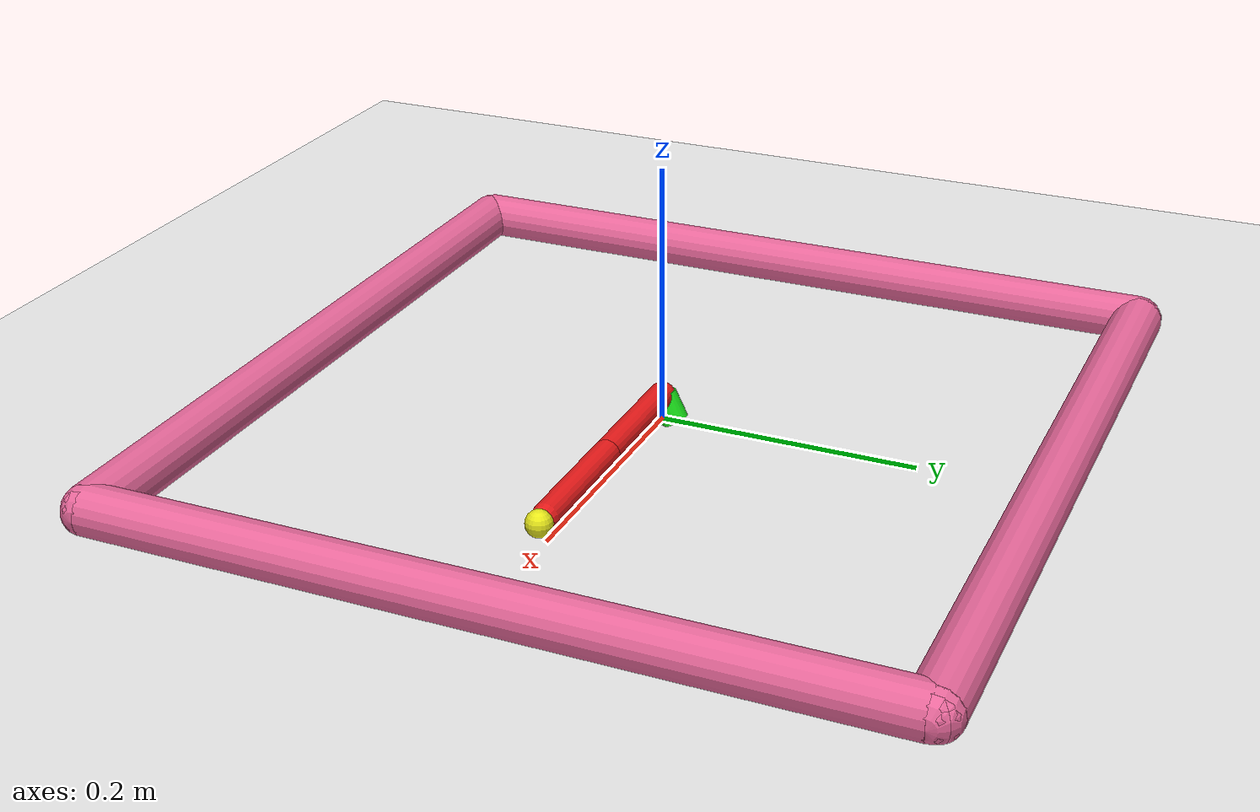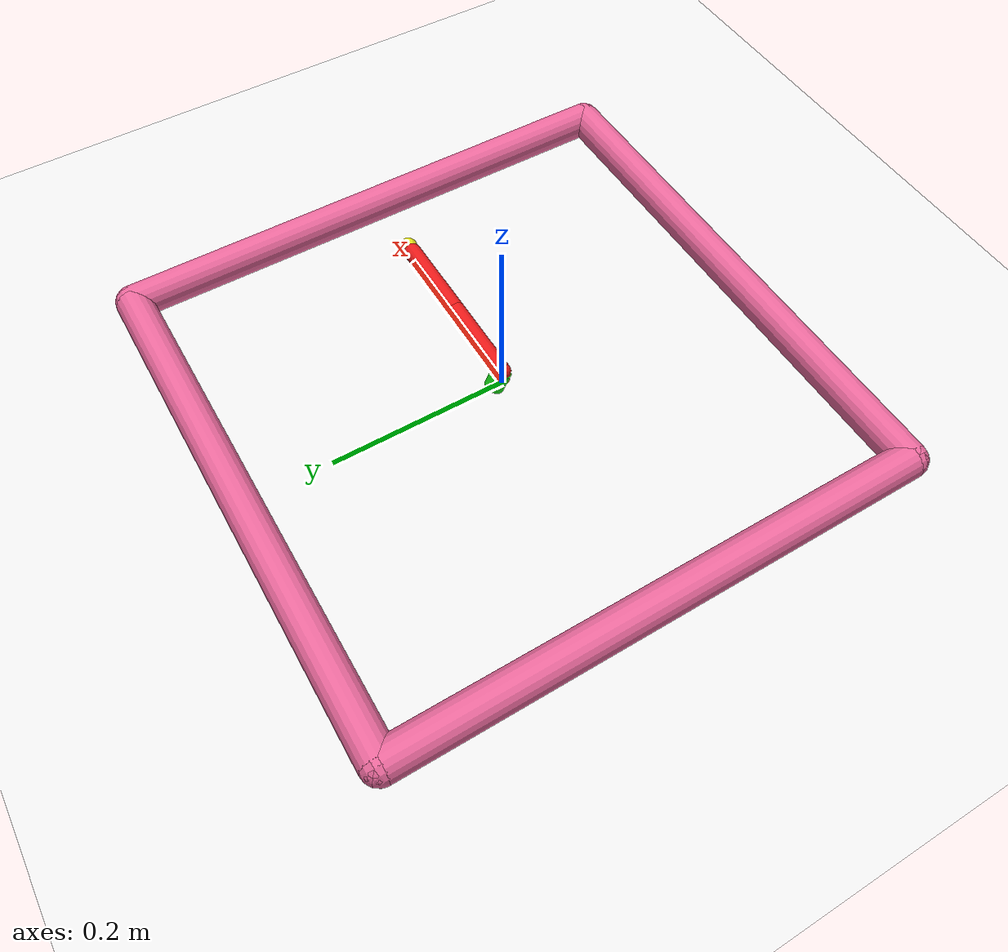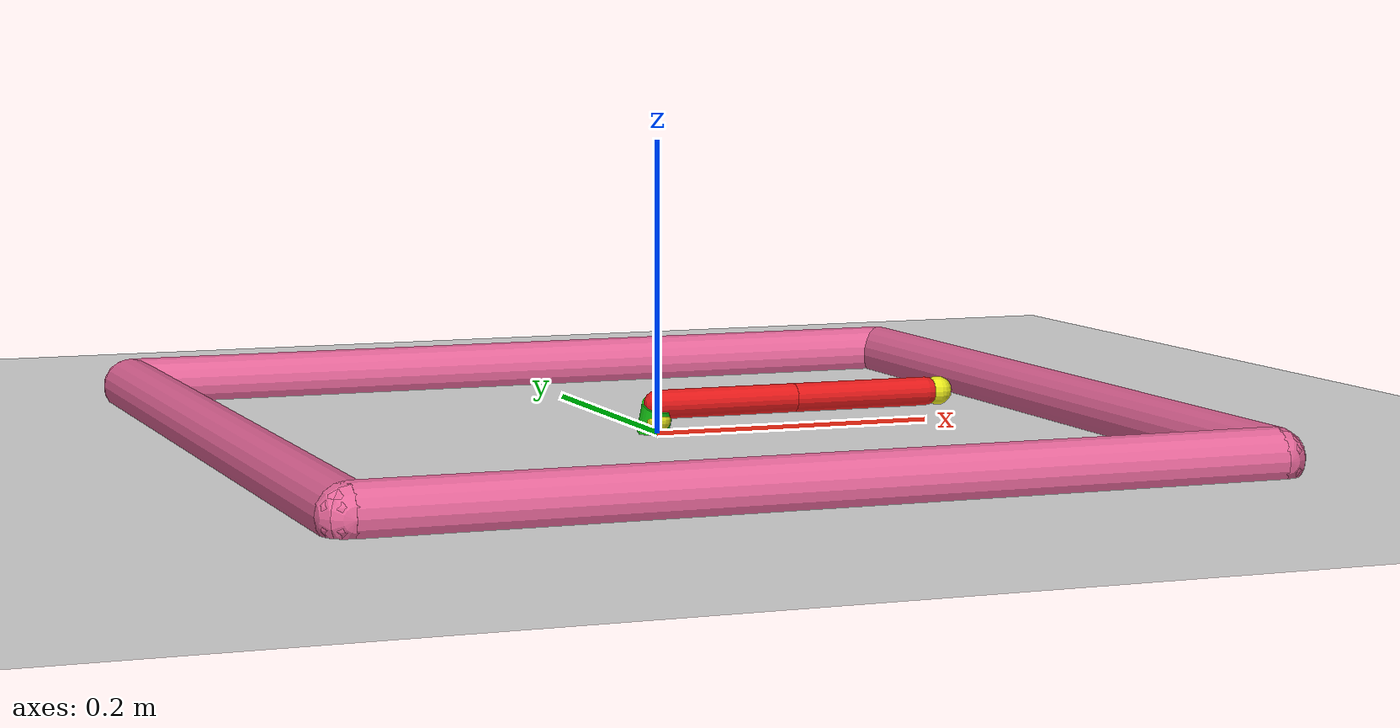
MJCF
<mujoco model="reacher2d">
	<compiler angle="radian" inertiafromgeom="true"/>
	<default>
		<joint armature="1" damping="1" limited="true"/>
		<geom contype="0" friction="1 0.1 0.1" rgba="0.7 0.7 0 1"/>
	</default>
	<option gravity="0 0 -9.81" integrator="RK4" timestep="0.01"/>
	<worldbody>
		<!-- Arena -->
		<geom conaffinity="0" contype="0" name="ground" pos="0 0 0" rgba="0.9 0.9 0.9 1" size="1 1 10" type="plane"/>
		<geom conaffinity="0" fromto="-.3 -.3 .01 .3 -.3 .01" name="sideS" rgba="0.9 0.4 0.6 1" size=".02" type="capsule"/>
		<geom conaffinity="0" fromto=" .3 -.3 .01 .3  .3 .01" name="sideE" rgba="0.9 0.4 0.6 1" size=".02" type="capsule"/>
		<geom conaffinity="0" fromto="-.3  .3 .01 .3  .3 .01" name="sideN" rgba="0.9 0.4 0.6 1" size=".02" type="capsule"/>
		<geom conaffinity="0" fromto="-.3 -.3 .01 -.3 .3 .01" name="sideW" rgba="0.9 0.4 0.6 1" size=".02" type="capsule"/>

		<!-- cylinder -->
		<geom conaffinity="0" contype="0" fromto="0 0.01 0 0 0 0.02" name="robot_root_right" rgba="0.1 0.9 0.1 1" size=".011" type="cylinder"/>
		<body name="robot" pos="0 0 .01">
			<!-- Arm -->
			<body name="robot_body0a" pos="0 0 .01">
				<geom fromto="0 0 0 0.1 0 0" name="robot_link0a" rgba="0.9 0.1 0.1 1" size=".01" type="capsule"/>
				<joint axis="0 0 1" limited="false" name="robot_joint0a" pos="0 0 0" type="hinge"/>

				<body name="robot_body0b" pos="0.1 0 0">
					<joint axis="0 0 1" limited="true" name="robot_joint0b" pos="0 0 0" range="-3.0 3.0" type="hinge"/>
					<geom fromto="0 0 0 0.1 0 0" name="robot_link0b" rgba="0.9 0.1 0.1 1" size=".01" type="capsule"/>

					<body name="robot_fingertip0" pos="0.11 0 0">
						<geom contype="0" name="robot_fingertip0" pos="0 0 0" rgba="0.9 0.9 0.1 1" size=".01" type="sphere"/>
					</body>

				</body>
			</body>
			<!-- Arm -->
			<body name="robot_body1a" pos="0 0 .01">
				<geom fromto="0 0 0 0.1 0 0" name="robot_link1a" rgba="0.1 0.1 0.9 1" size=".01" type="capsule"/>
				<joint axis="0 0 1" limited="false" name="robot_joint1a" pos="0 0 0" type="hinge"/>

				<body name="robot_body1b" pos="0.1 0 0">
					<joint axis="0 0 1" limited="true" name="robot_joint1b" pos="0 0 0" range="-3.0 3.0" type="hinge"/>
					<geom fromto="0 0 0 0.1 0 0" name="robot_link1b" rgba="0.1 0.1 0.9 1" size=".01" type="capsule"/>

					<body name="robot_fingertip1" pos="0.11 0 0" rgba="0.1 0.9 0.9 1">
						<geom contype="0" name="robot_fingertip1" pos="0 0 0" rgba="0.1 0.9 0.9 1" size=".01" type="sphere"/>
					</body>

				</body>
			</body>

		</body>
		<!-- Target -->
		<body name="target0" pos="0 0 .01">
			<joint armature="0" axis="1 0 0" damping="0" limited="true" name="target0_x" pos="0 0 0" range="-.27 .27" stiffness="0" type="slide"/>
			<joint armature="0" axis="0 1 0" damping="0" limited="true" name="target0_y" pos="0 0 0" range="-.27 .27" stiffness="0" type="slide"/>
			<geom conaffinity="0" contype="0" name="target0" pos="0 0 0" rgba="0.9 0.9 0.1 1" size=".009" type="sphere"/>
		</body>
		<!-- Target -->
		<body name="target1" pos="0 0 .01">
			<joint armature="0" axis="1 0 0" damping="0" limited="true" name="target1_x" pos="0 0 0" range="-.27 .27" stiffness="0" type="slide"/>
			<joint armature="0" axis="0 1 0" damping="0" limited="true" name="target1_y" pos="0 0 0" range="-.27 .27" stiffness="0" type="slide"/>
			<geom conaffinity="0" contype="0" name="target1" pos="0 0 0" rgba="0.1 0.9 0.9 1" size=".009" type="sphere"/>
		</body>
	</worldbody>
	<actuator>
		<motor ctrllimited="true" ctrlrange="-1.0 1.0" gear="200.0" joint="joint0a"/>
		<motor ctrllimited="true" ctrlrange="-1.0 1.0" gear="200.0" joint="joint0b"/>
		<motor ctrllimited="true" ctrlrange="-1.0 1.0" gear="200.0" joint="joint1a"/>
		<motor ctrllimited="true" ctrlrange="-1.0 1.0" gear="200.0" joint="joint1b"/>
	</actuator>
</mujoco>
